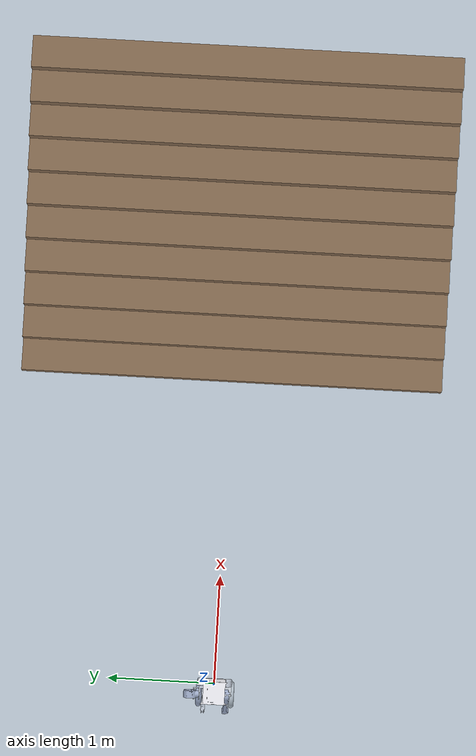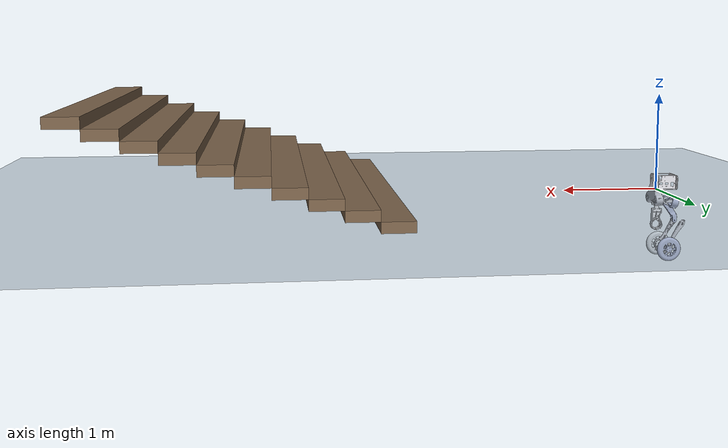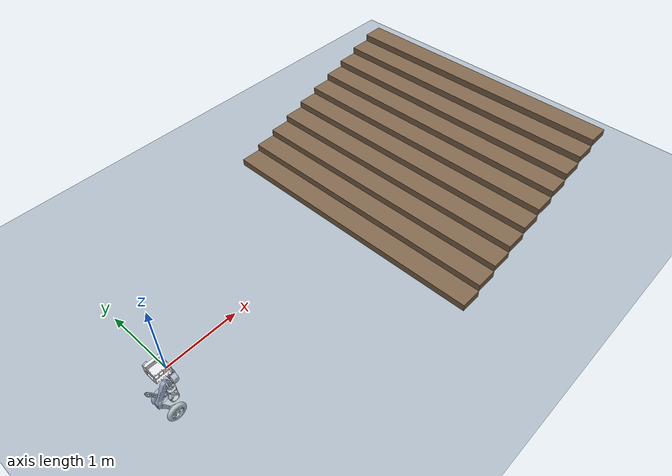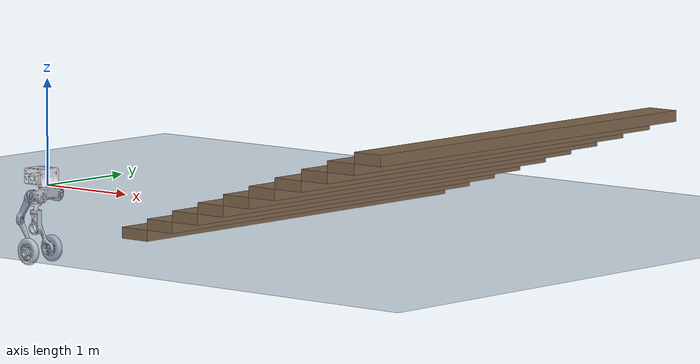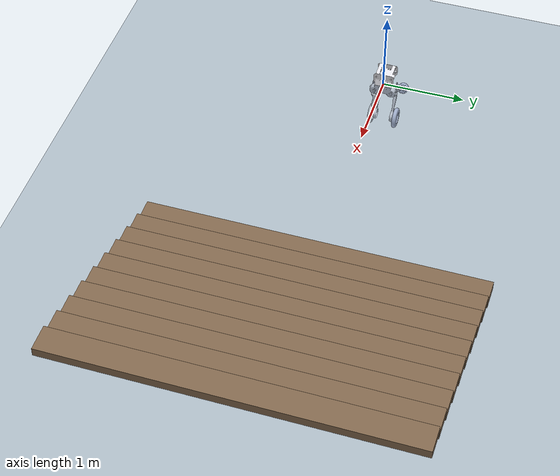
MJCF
<mujoco model="l5aurdf20260521">
  <compiler angle="radian" meshdir="../meshes/"/>
<option timestep="0.002" integrator="RK4">
  </option>
  <default>
    <light castshadow="false" diffuse="1 1 1" />
    <camera fovy="60" />
    <default class="visual">
      <geom contype="0" conaffinity="0" group="1" type="mesh" rgba="0.9 0.9 0.9 1.0" />
    </default>
    <default class="collision">
      <geom contype="1" conaffinity="1" friction="1.0 0.01 0.005" rgba="0.9 0.3 0.4 0" margin="0.001" group="0" />
    </default>
    <joint damping="0.01" armature="0.01" frictionloss="0.5" />
  </default>
  <asset>
    <texture name="gridtex" type="2d" builtin="checker" width="512" height="512" rgb1="0.2 0.3 0.4" rgb2="0.3 0.4 0.5" mark="edge" markrgb="1 1 1"/>
    <material name="grid" texture="gridtex" texrepeat="4 4" reflectance="0.2"/>
    <mesh name="base_link" file="base_link.STL"/>
    <mesh name="left_hip_roll_link" file="left_hip_roll_link.STL"/>
    <mesh name="left_hip_pitch_link" file="left_hip_pitch_link.STL"/>
    <mesh name="left_knee_link" file="left_knee_link.STL"/>
    <mesh name="left_wheel_link" file="left_wheel_link.STL"/>
    <mesh name="right_hip_roll_link" file="right_hip_roll_link.STL"/>
    <mesh name="right_hip_pitch_link" file="right_hip_pitch_link.STL"/>
    <mesh name="right_knee_link" file="right_knee_link.STL"/>
    <mesh name="right_wheel_link" file="right_wheel_link.STL"/>
  </asset>

  <worldbody>
    <light pos="5 0 30" />
    <geom name="plane" type="plane" size="20 20 .01" material="grid" friction="1.0 0.02 0.01"/>

            <!-- Step 1 -->
    <geom name="step1" type="box"
          size="0.15 2.0 0.05"
          pos="3.0 0.0 0.05"
          rgba="0.5 0.4 0.3 1"/>

    <!-- Step 2 -->
    <geom name="step2" type="box"
          size="0.15 2.0 0.05"
          pos="3.3 0.0 0.15"
          rgba="0.5 0.4 0.3 1"/>

    <!-- Step 3 -->
    <geom name="step3" type="box"
          size="0.15 2.0 0.05"
          pos="3.6 0.0 0.25"
          rgba="0.5 0.4 0.3 1"/>

    <!-- Step 4 -->
    <geom name="step4" type="box"
          size="0.15 2.0 0.05"
          pos="3.9 0.0 0.35"
          rgba="0.5 0.4 0.3 1"/>

    <!-- Step 5 -->
    <geom name="step5" type="box"
          size="0.15 2.0 0.05"
          pos="4.2 0.0 0.45"
          rgba="0.5 0.4 0.3 1"/>

    <!-- Step 6 -->
    <geom name="step6" type="box"
          size="0.15 2.0 0.05"
          pos="4.5 0.0 0.55"
          rgba="0.5 0.4 0.3 1"/>

    <!-- Step 7 -->
    <geom name="step7" type="box"
          size="0.15 2.0 0.05"
          pos="4.8 0.0 0.65"
          rgba="0.5 0.4 0.3 1"/>

    <!-- Step 8 -->
    <geom name="step8" type="box"
          size="0.15 2.0 0.05"
          pos="5.1 0.0 0.75"
          rgba="0.5 0.4 0.3 1"/>

    <!-- Step 9 -->
    <geom name="step9" type="box"
          size="0.15 2.0 0.05"
          pos="5.4 0.0 0.85"
          rgba="0.5 0.4 0.3 1"/>

    <!-- Step 10 -->
    <geom name="step10" type="box"
          size="0.15 2.0 0.05"
          pos="5.7 0.0 0.95"
          rgba="0.5 0.4 0.3 1"/>

    <body name="base_link">
      <inertial pos="-0.057921 0.000679 0.013437" quat="0.950827 -0.0135512 -0.309407 -0.00340622" mass="9.6101" diaginertia="0.145462 0.116201 0.0884667"/>
      <joint name="base_joint" type="free" limited="false" actuatorfrclimited="false"/>
      <geom type="mesh" contype="0" conaffinity="0" group="1" density="0" rgba="0.8902 0.8902 0.91373 1" mesh="base_link"/>
      <geom type="mesh" rgba="0.8902 0.8902 0.91373 1" mesh="base_link"/>
      <site name="imu" quat="1 0 0 0" />
      <body name="left_hip_roll_link" pos="-0.027 0.105 -0.1017">
        <inertial pos="-0.067435 0.052643 -3.2e-05" quat="0.610546 0.611067 0.355481 0.357021" mass="1.2052" diaginertia="0.0027544 0.002368 0.0013006"/>
        <joint name="left_hip_roll_joint" pos="0 0 0" axis="1 0 0" range="-0.384 1.396" actuatorfrcrange="-90 90"/>
        <geom type="mesh" contype="0" conaffinity="0" group="1" density="0" rgba="0.8902 0.8902 0.91373 1" mesh="left_hip_roll_link"/>
        <geom type="mesh" rgba="0.8902 0.8902 0.91373 1" mesh="left_hip_roll_link"/>
        <body name="left_hip_pitch_link" pos="-0.08 0.0375 0">
          <inertial pos="-0.032261 -0.059213 -0.041738" quat="0.945946 0.105893 0.275711 0.134002" mass="2.294" diaginertia="0.024393 0.0237758 0.00333323"/>
          <joint name="left_hip_pitch_joint" pos="0 0 0" axis="0 1 0" range="-0.908 1.396" actuatorfrcrange="-90 90"/>
          <geom type="mesh" contype="0" conaffinity="0" group="1" density="0" rgba="0.79216 0.81961 0.93333 1" mesh="left_hip_pitch_link"/>
          <geom type="mesh" rgba="0.79216 0.81961 0.93333 1" mesh="left_hip_pitch_link"/>
          <body name="left_knee_link" pos="-0.15 -0.0375 -0.25981">
            <inertial pos="0.11397 -0.00529 -0.19558" quat="0.683975 -0.194182 -0.168083 0.682803" mass="1.6802" diaginertia="0.0238343 0.0231448 0.0013569"/>
            <joint name="left_knee_joint" pos="0 0 0" axis="0 1 0" range="-1.309 0.262" actuatorfrcrange="-130 130"/>
            <geom type="mesh" contype="0" conaffinity="0" group="1" density="0" rgba="0.8902 0.8902 0.91373 1" mesh="left_knee_link"/>
            <geom type="mesh" rgba="0.8902 0.8902 0.91373 1" mesh="left_knee_link"/>
            <body name="left_wheel_link" pos="0.15 0.0135 -0.25981">
              <inertial pos="0 0.03878 2e-06" quat="0.707107 0 0 0.707107" mass="1.5825" diaginertia="0.012709 0.006787 0.006786"/>
              <joint name="left_wheel_joint" pos="0 0 0" axis="0 1 0" range="-1000000 1000000" actuatorfrcrange="-90 90"/>
              <geom type="mesh" contype="0" conaffinity="0" group="1" density="0" rgba="0.79216 0.81961 0.93333 1" mesh="left_wheel_link"/>
              <geom type="mesh" rgba="0.79216 0.81961 0.93333 1" mesh="left_wheel_link"/>
              <site name="wheel_left_site" pos="0 0 0"/>
            </body>
          </body>
        </body>
      </body>
      <body name="right_hip_roll_link" pos="-0.027 -0.105 -0.1017">
        <inertial pos="-0.067435 -0.052643 3.2e-05" quat="0.355481 0.357021 0.610546 0.611067" mass="1.2052" diaginertia="0.0027544 0.002368 0.0013006"/>
        <joint name="right_hip_roll_joint" pos="0 0 0" axis="1 0 0" range="-1.396 0.384" actuatorfrcrange="-90 90"/>
        <geom type="mesh" contype="0" conaffinity="0" group="1" density="0" rgba="1 1 1 1" mesh="right_hip_roll_link"/>
        <geom type="mesh" rgba="1 1 1 1" mesh="right_hip_roll_link"/>
        <body name="right_hip_pitch_link" pos="-0.08 -0.0375 0">
          <inertial pos="-0.026447 0.059888 -0.032975" quat="0.949336 -0.097084 0.278194 -0.109288" mass="2.8399" diaginertia="0.0260669 0.0253292 0.00366097"/>
          <joint name="right_hip_pitch_joint" pos="0 0 0" axis="0 1 0" range="-0.908 1.396" actuatorfrcrange="-90 90"/>
          <geom type="mesh" contype="0" conaffinity="0" group="1" density="0" rgba="0.79216 0.81961 0.93333 1" mesh="right_hip_pitch_link"/>
          <geom type="mesh" rgba="0.79216 0.81961 0.93333 1" mesh="right_hip_pitch_link"/>
          <body name="right_knee_link" pos="-0.15 0.0375 -0.25981">
            <inertial pos="0.11394 0.005271 -0.19561" quat="0.683547 -0.167745 -0.194227 0.683301" mass="1.6815" diaginertia="0.0238013 0.0231121 0.00135854"/>
            <joint name="right_knee_joint" pos="0 0 0" axis="0 1 0" range="-1.309 0.262" actuatorfrcrange="-130 130"/>
            <geom type="mesh" contype="0" conaffinity="0" group="1" density="0" rgba="0.8902 0.8902 0.91373 1" mesh="right_knee_link"/>
            <geom type="mesh" rgba="0.8902 0.8902 0.91373 1" mesh="right_knee_link"/>
            <body name="right_wheel_link" pos="0.15 -0.0135 -0.25981">
              <inertial pos="-2e-06 -0.038778 0" quat="0.707107 0 0 0.707107" mass="1.5838" diaginertia="0.01271 0.006787 0.006787"/>
              <joint name="right_wheel_joint" pos="0 0 0" axis="0 1 0" range="-1000000 1000000" actuatorfrcrange="-90 90"/>
              <geom type="mesh" contype="0" conaffinity="0" group="1" density="0" rgba="0.89804 0.91765 0.92941 1" mesh="right_wheel_link"/>
              <geom type="mesh" rgba="0.89804 0.91765 0.92941 1" mesh="right_wheel_link"/>
              <site name="wheel_right_site" pos="0 0 0"/>
            </body>
          </body>
        </body>
      </body>
    </body>
  </worldbody>

 <actuator>
    <motor joint="left_hip_roll_joint" name="left_hip_roll_joint" ctrllimited="true" ctrlrange="-200 200" />
    <motor joint="left_hip_pitch_joint" name="left_hip_pitch_joint" ctrllimited="true" ctrlrange="-200 200" />
    <motor joint="left_knee_joint" name="left_knee_joint" ctrllimited="true" ctrlrange="-200 200" />
    <motor joint="left_wheel_joint" name="left_wheel_joint" ctrllimited="true" ctrlrange="-200 200" />
    <motor joint="right_hip_roll_joint" name="right_hip_roll_joint" ctrllimited="true" ctrlrange="-200 200" />
    <motor joint="right_hip_pitch_joint" name="right_hip_pitch_joint" ctrllimited="true" ctrlrange="-200 200" />
    <motor joint="right_knee_joint" name="right_knee_joint" ctrllimited="true" ctrlrange="-200 200" />
    <motor joint="right_wheel_joint" name="right_wheel_joint" ctrllimited="true" ctrlrange="-200 200" />
  </actuator>

   <sensor>
    <actuatorpos name="left_hip_roll_joint_p" actuator="left_hip_roll_joint" />
    <actuatorvel name="left_hip_roll_joint_v" actuator="left_hip_roll_joint" />
    <actuatorfrc name="left_hip_roll_joint_f" actuator="left_hip_roll_joint" noise="0.001" />
    <actuatorpos name="left_hip_pitch_joint_p" actuator="left_hip_pitch_joint" />
    <actuatorvel name="left_hip_pitch_joint_v" actuator="left_hip_pitch_joint" />
    <actuatorfrc name="left_hip_pitch_joint_f" actuator="left_hip_pitch_joint" noise="0.001" />
    <actuatorpos name="left_knee_joint_p" actuator="left_knee_joint" />
    <actuatorvel name="left_knee_joint_v" actuator="left_knee_joint" />
    <actuatorfrc name="left_knee_joint_f" actuator="left_knee_joint" noise="0.001" />
    <actuatorpos name="left_wheel_joint_p" actuator="left_wheel_joint" />
    <actuatorvel name="left_wheel_joint_v" actuator="left_wheel_joint" />
    <actuatorfrc name="left_wheel_joint_f" actuator="left_wheel_joint" noise="0.001" />
    <actuatorpos name="right_hip_roll_joint_p" actuator="right_hip_roll_joint" />
    <actuatorvel name="right_hip_roll_joint_v" actuator="right_hip_roll_joint" />
    <actuatorfrc name="right_hip_roll_joint_f" actuator="right_hip_roll_joint" noise="0.001" />
    <actuatorpos name="right_hip_pitch_joint_p" actuator="right_hip_pitch_joint" />
    <actuatorvel name="right_hip_pitch_joint_v" actuator="right_hip_pitch_joint" />
    <actuatorfrc name="right_hip_pitch_joint_f" actuator="right_hip_pitch_joint" noise="0.001" />
    <actuatorpos name="right_knee_joint_p" actuator="right_knee_joint" />
    <actuatorvel name="right_knee_joint_v" actuator="right_knee_joint" />
    <actuatorfrc name="right_knee_joint_f" actuator="right_knee_joint" noise="0.001" />
    <actuatorpos name="right_wheel_joint_p" actuator="right_wheel_joint" />
    <actuatorvel name="right_wheel_joint_v" actuator="right_wheel_joint" />
    <actuatorfrc name="right_wheel_joint_f" actuator="right_wheel_joint" noise="0.001" />

    <framequat name='orientation' objtype='site' noise='0.001' objname='imu'/>
    <framepos name='position' objtype='site' noise='0.001' objname='imu'/>
    <gyro name='angular-velocity' site='imu' noise='0.005' cutoff='34.9'/>
    <velocimeter name='linear-velocity' site='imu' noise='0.001' cutoff='30'/>
    <accelerometer name='linear-acceleration' site='imu' noise='0.005' cutoff='157'/>
    <magnetometer name='magnetometer' site='imu'/>
  </sensor>

  <contact>
    <exclude body1="base_link" body2="left_hip_roll_link" />
    <exclude body1="base_link" body2="left_hip_pitch_link" />
    <exclude body1="base_link" body2="right_hip_roll_link" />
    <exclude body1="base_link" body2="right_hip_pitch_link" />
  </contact>

  <keyframe>
    <!--两轮平衡和步态-->
    <key time="0" qpos="0 0 0.643 1 0 0 0
    0.0523599 0.261799 -0.563811 0
    -0.0523599 0.261799 -0.563811 0" />
  </keyframe>
  <!-- 右转15度 0.99144  0  0  -0.13053
  右转20度 0.98481  0  0  -0.17365 -->

</mujoco>
